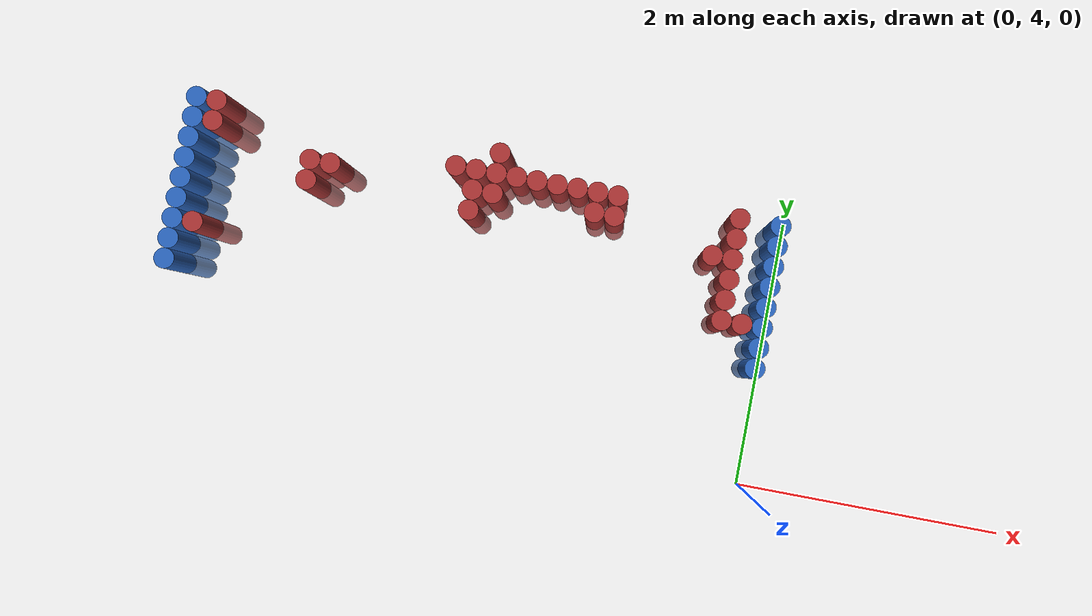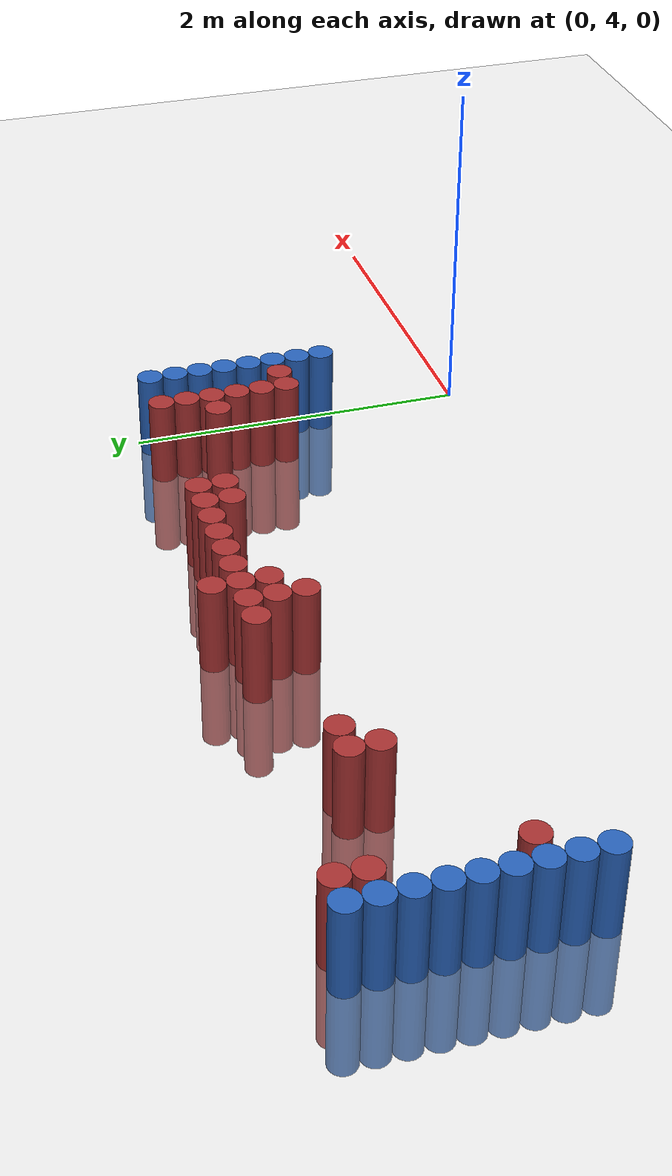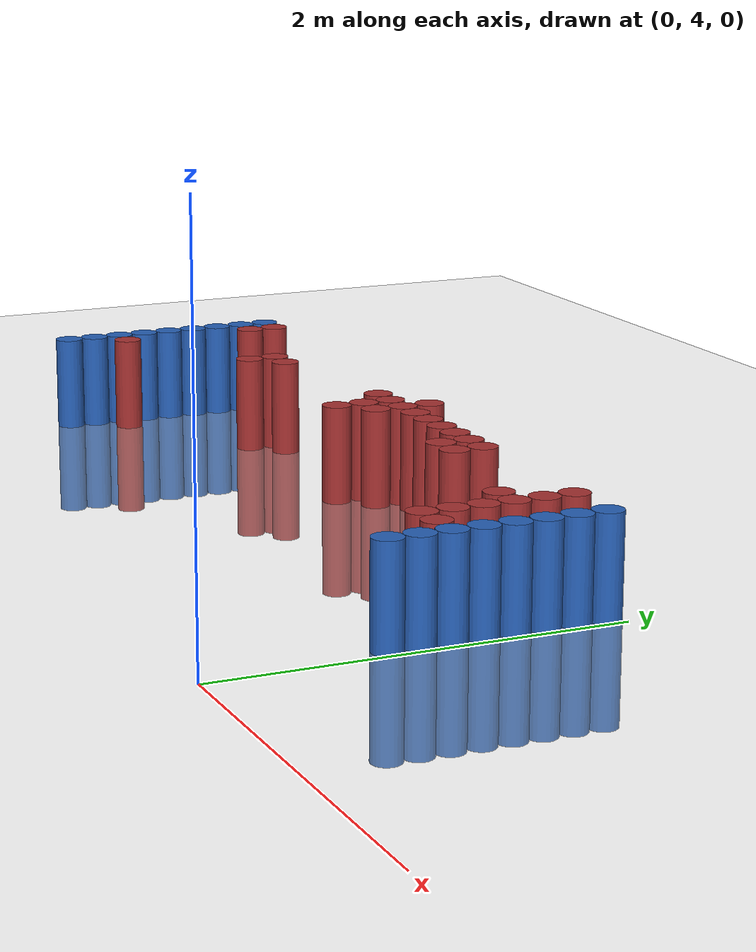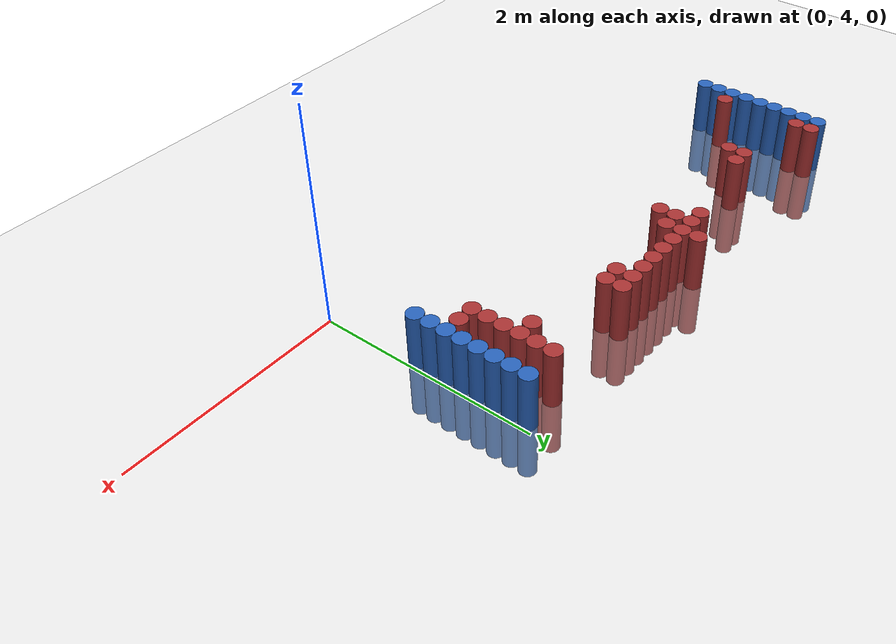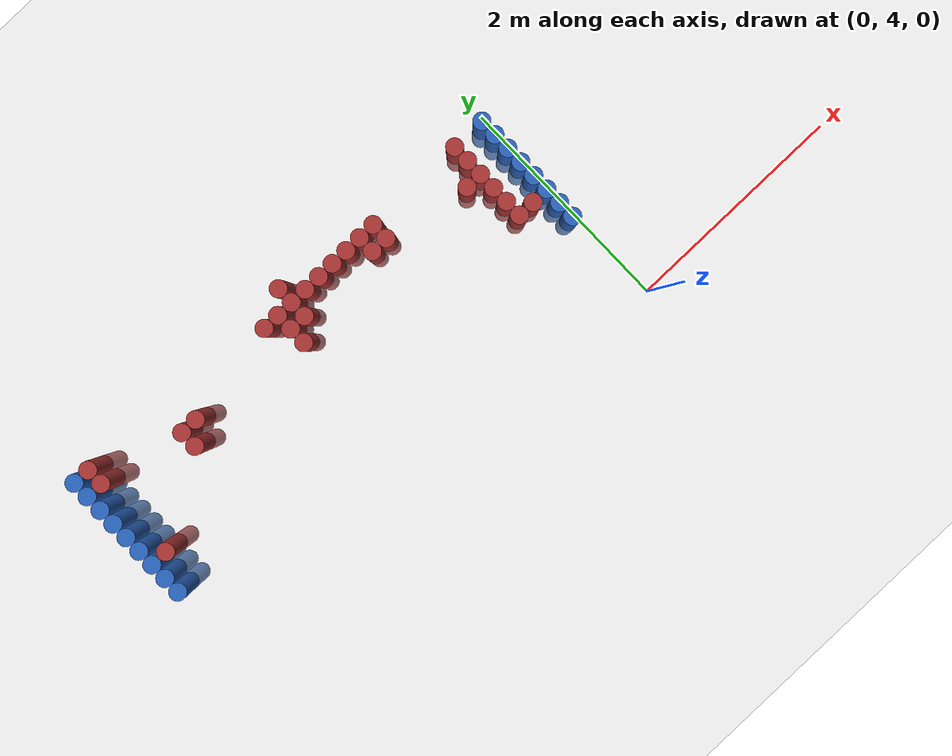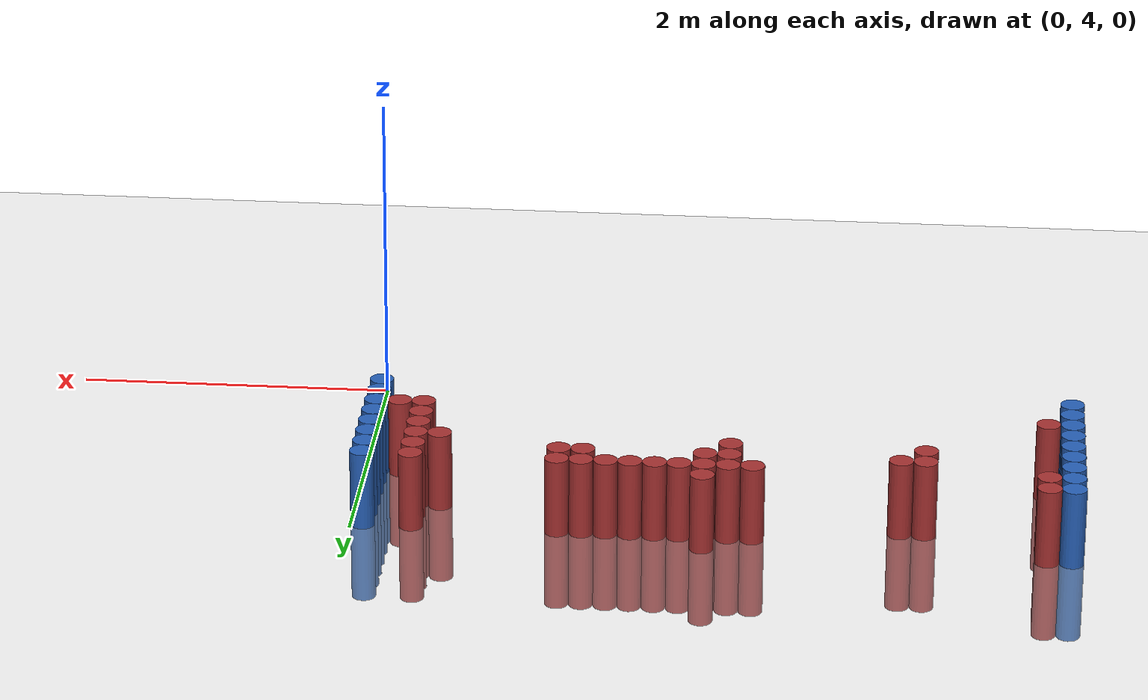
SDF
<sdf version="1.6">
 <world name="default">
  <model name="ground_plane">
   <static>1</static>
   <link name="link">
    <collision name="collision">
     <geometry><plane><normal>0 0 1</normal><size>100 100</size></plane></geometry>
     <surface><friction><ode><mu>100</mu><mu2>50</mu2></ode></friction></surface>
    </collision>
    <visual name="visual">
     <cast_shadows>0</cast_shadows>
     <geometry><plane><normal>0 0 1</normal><size>100 100</size></plane></geometry>
     <material>
      <script><uri>file://media/materials/scripts/gazebo.material</uri><name>Gazebo/Grey</name></script>
     </material>
    </visual>
   </link>
  </model>
  <model name="unit_cylinder_92">
   <static>1</static>
   <pose>-0.075000 4.875000 0.000000 0.000000 0.000000 0.000000</pose>
   <link name="link">
    <inertial>
     <mass>1</mass>
     <inertia><ixx>0.145833</ixx><ixy>0</ixy><ixz>0</ixz><iyy>0.145833</iyy><iyz>0</iyz><izz>0.125</izz></inertia>
    </inertial>
    <collision name="collision">
     <geometry><cylinder><radius>0.075000</radius><length>1</length></cylinder></geometry>
    </collision>
    <visual name="visual">
     <geometry><cylinder><radius>0.075000</radius><length>1</length></cylinder></geometry>
     <material>
      <ambient>0.152000 0.379000 0.720000 1</ambient>
      <diffuse>0.152000 0.379000 0.720000 1</diffuse>
     </material>
     <material>
      <script><name>Gazebo/Grey</name><uri>file://media/materials/scripts/gazebo.material</uri></script>
     </material>
    </visual>
   </link>
  </model>
  <model name="unit_cylinder_93">
   <static>1</static>
   <pose>-4.425000 4.875000 0.000000 0.000000 0.000000 0.000000</pose>
   <link name="link">
    <inertial>
     <mass>1</mass>
     <inertia><ixx>0.145833</ixx><ixy>0</ixy><ixz>0</ixz><iyy>0.145833</iyy><iyz>0</iyz><izz>0.125</izz></inertia>
    </inertial>
    <collision name="collision">
     <geometry><cylinder><radius>0.075000</radius><length>1</length></cylinder></geometry>
    </collision>
    <visual name="visual">
     <geometry><cylinder><radius>0.075000</radius><length>1</length></cylinder></geometry>
     <material>
      <ambient>0.152000 0.379000 0.720000 1</ambient>
      <diffuse>0.152000 0.379000 0.720000 1</diffuse>
     </material>
     <material>
      <script><name>Gazebo/Grey</name><uri>file://media/materials/scripts/gazebo.material</uri></script>
     </material>
    </visual>
   </link>
  </model>
  <model name="unit_cylinder_94">
   <static>1</static>
   <pose>-0.075000 5.025000 0.000000 0.000000 0.000000 0.000000</pose>
   <link name="link">
    <inertial>
     <mass>1</mass>
     <inertia><ixx>0.145833</ixx><ixy>0</ixy><ixz>0</ixz><iyy>0.145833</iyy><iyz>0</iyz><izz>0.125</izz></inertia>
    </inertial>
    <collision name="collision">
     <geometry><cylinder><radius>0.075000</radius><length>1</length></cylinder></geometry>
    </collision>
    <visual name="visual">
     <geometry><cylinder><radius>0.075000</radius><length>1</length></cylinder></geometry>
     <material>
      <ambient>0.152000 0.379000 0.720000 1</ambient>
      <diffuse>0.152000 0.379000 0.720000 1</diffuse>
     </material>
     <material>
      <script><name>Gazebo/Grey</name><uri>file://media/materials/scripts/gazebo.material</uri></script>
     </material>
    </visual>
   </link>
  </model>
  <model name="unit_cylinder_95">
   <static>1</static>
   <pose>-4.425000 5.025000 0.000000 0.000000 0.000000 0.000000</pose>
   <link name="link">
    <inertial>
     <mass>1</mass>
     <inertia><ixx>0.145833</ixx><ixy>0</ixy><ixz>0</ixz><iyy>0.145833</iyy><iyz>0</iyz><izz>0.125</izz></inertia>
    </inertial>
    <collision name="collision">
     <geometry><cylinder><radius>0.075000</radius><length>1</length></cylinder></geometry>
    </collision>
    <visual name="visual">
     <geometry><cylinder><radius>0.075000</radius><length>1</length></cylinder></geometry>
     <material>
      <ambient>0.152000 0.379000 0.720000 1</ambient>
      <diffuse>0.152000 0.379000 0.720000 1</diffuse>
     </material>
     <material>
      <script><name>Gazebo/Grey</name><uri>file://media/materials/scripts/gazebo.material</uri></script>
     </material>
    </visual>
   </link>
  </model>
  <model name="unit_cylinder_96">
   <static>1</static>
   <pose>-4.425000 5.175000 0.000000 0.000000 0.000000 0.000000</pose>
   <link name="link">
    <inertial>
     <mass>1</mass>
     <inertia><ixx>0.145833</ixx><ixy>0</ixy><ixz>0</ixz><iyy>0.145833</iyy><iyz>0</iyz><izz>0.125</izz></inertia>
    </inertial>
    <collision name="collision">
     <geometry><cylinder><radius>0.075000</radius><length>1</length></cylinder></geometry>
    </collision>
    <visual name="visual">
     <geometry><cylinder><radius>0.075000</radius><length>1</length></cylinder></geometry>
     <material>
      <ambient>0.152000 0.379000 0.720000 1</ambient>
      <diffuse>0.152000 0.379000 0.720000 1</diffuse>
     </material>
     <material>
      <script><name>Gazebo/Grey</name><uri>file://media/materials/scripts/gazebo.material</uri></script>
     </material>
    </visual>
   </link>
  </model>
  <model name="unit_cylinder_97">
   <static>1</static>
   <pose>-4.425000 5.325000 0.000000 0.000000 0.000000 0.000000</pose>
   <link name="link">
    <inertial>
     <mass>1</mass>
     <inertia><ixx>0.145833</ixx><ixy>0</ixy><ixz>0</ixz><iyy>0.145833</iyy><iyz>0</iyz><izz>0.125</izz></inertia>
    </inertial>
    <collision name="collision">
     <geometry><cylinder><radius>0.075000</radius><length>1</length></cylinder></geometry>
    </collision>
    <visual name="visual">
     <geometry><cylinder><radius>0.075000</radius><length>1</length></cylinder></geometry>
     <material>
      <ambient>0.152000 0.379000 0.720000 1</ambient>
      <diffuse>0.152000 0.379000 0.720000 1</diffuse>
     </material>
     <material>
      <script><name>Gazebo/Grey</name><uri>file://media/materials/scripts/gazebo.material</uri></script>
     </material>
    </visual>
   </link>
  </model>
  <model name="unit_cylinder_98">
   <static>1</static>
   <pose>-4.425000 5.475000 0.000000 0.000000 0.000000 0.000000</pose>
   <link name="link">
    <inertial>
     <mass>1</mass>
     <inertia><ixx>0.145833</ixx><ixy>0</ixy><ixz>0</ixz><iyy>0.145833</iyy><iyz>0</iyz><izz>0.125</izz></inertia>
    </inertial>
    <collision name="collision">
     <geometry><cylinder><radius>0.075000</radius><length>1</length></cylinder></geometry>
    </collision>
    <visual name="visual">
     <geometry><cylinder><radius>0.075000</radius><length>1</length></cylinder></geometry>
     <material>
      <ambient>0.152000 0.379000 0.720000 1</ambient>
      <diffuse>0.152000 0.379000 0.720000 1</diffuse>
     </material>
     <material>
      <script><name>Gazebo/Grey</name><uri>file://media/materials/scripts/gazebo.material</uri></script>
     </material>
    </visual>
   </link>
  </model>
  <model name="unit_cylinder_99">
   <static>1</static>
   <pose>-4.425000 5.625000 0.000000 0.000000 0.000000 0.000000</pose>
   <link name="link">
    <inertial>
     <mass>1</mass>
     <inertia><ixx>0.145833</ixx><ixy>0</ixy><ixz>0</ixz><iyy>0.145833</iyy><iyz>0</iyz><izz>0.125</izz></inertia>
    </inertial>
    <collision name="collision">
     <geometry><cylinder><radius>0.075000</radius><length>1</length></cylinder></geometry>
    </collision>
    <visual name="visual">
     <geometry><cylinder><radius>0.075000</radius><length>1</length></cylinder></geometry>
     <material>
      <ambient>0.152000 0.379000 0.720000 1</ambient>
      <diffuse>0.152000 0.379000 0.720000 1</diffuse>
     </material>
     <material>
      <script><name>Gazebo/Grey</name><uri>file://media/materials/scripts/gazebo.material</uri></script>
     </material>
    </visual>
   </link>
  </model>
  <model name="unit_cylinder_100">
   <static>1</static>
   <pose>-4.425000 5.775000 0.000000 0.000000 0.000000 0.000000</pose>
   <link name="link">
    <inertial>
     <mass>1</mass>
     <inertia><ixx>0.145833</ixx><ixy>0</ixy><ixz>0</ixz><iyy>0.145833</iyy><iyz>0</iyz><izz>0.125</izz></inertia>
    </inertial>
    <collision name="collision">
     <geometry><cylinder><radius>0.075000</radius><length>1</length></cylinder></geometry>
    </collision>
    <visual name="visual">
     <geometry><cylinder><radius>0.075000</radius><length>1</length></cylinder></geometry>
     <material>
      <ambient>0.152000 0.379000 0.720000 1</ambient>
      <diffuse>0.152000 0.379000 0.720000 1</diffuse>
     </material>
     <material>
      <script><name>Gazebo/Grey</name><uri>file://media/materials/scripts/gazebo.material</uri></script>
     </material>
    </visual>
   </link>
  </model>
  <model name="unit_cylinder_101">
   <static>1</static>
   <pose>-4.425000 5.925000 0.000000 0.000000 0.000000 0.000000</pose>
   <link name="link">
    <inertial>
     <mass>1</mass>
     <inertia><ixx>0.145833</ixx><ixy>0</ixy><ixz>0</ixz><iyy>0.145833</iyy><iyz>0</iyz><izz>0.125</izz></inertia>
    </inertial>
    <collision name="collision">
     <geometry><cylinder><radius>0.075000</radius><length>1</length></cylinder></geometry>
    </collision>
    <visual name="visual">
     <geometry><cylinder><radius>0.075000</radius><length>1</length></cylinder></geometry>
     <material>
      <ambient>0.152000 0.379000 0.720000 1</ambient>
      <diffuse>0.152000 0.379000 0.720000 1</diffuse>
     </material>
     <material>
      <script><name>Gazebo/Grey</name><uri>file://media/materials/scripts/gazebo.material</uri></script>
     </material>
    </visual>
   </link>
  </model>
  <model name="unit_cylinder_102">
   <static>1</static>
   <pose>-4.425000 6.075000 0.000000 0.000000 0.000000 0.000000</pose>
   <link name="link">
    <inertial>
     <mass>1</mass>
     <inertia><ixx>0.145833</ixx><ixy>0</ixy><ixz>0</ixz><iyy>0.145833</iyy><iyz>0</iyz><izz>0.125</izz></inertia>
    </inertial>
    <collision name="collision">
     <geometry><cylinder><radius>0.075000</radius><length>1</length></cylinder></geometry>
    </collision>
    <visual name="visual">
     <geometry><cylinder><radius>0.075000</radius><length>1</length></cylinder></geometry>
     <material>
      <ambient>0.152000 0.379000 0.720000 1</ambient>
      <diffuse>0.152000 0.379000 0.720000 1</diffuse>
     </material>
     <material>
      <script><name>Gazebo/Grey</name><uri>file://media/materials/scripts/gazebo.material</uri></script>
     </material>
    </visual>
   </link>
  </model>
  <model name="unit_cylinder_126">
   <static>1</static>
   <pose>-4.275000 5.175000 0.000000 0.000000 0.000000 0.000000</pose>
   <link name="link">
    <inertial>
     <mass>1</mass>
     <inertia><ixx>0.145833</ixx><ixy>0</ixy><ixz>0</ixz><iyy>0.145833</iyy><iyz>0</iyz><izz>0.125</izz></inertia>
    </inertial>
    <collision name="collision">
     <geometry><cylinder><radius>0.075000</radius><length>1</length></cylinder></geometry>
    </collision>
    <visual name="visual">
     <geometry><cylinder><radius>0.075000</radius><length>1</length></cylinder></geometry>
     <material>
      <ambient>0.648000 0.192000 0.192000 1</ambient>
      <diffuse>0.648000 0.192000 0.192000 1</diffuse>
     </material>
     <material>
      <script><name>Gazebo/Grey</name><uri>file://media/materials/scripts/gazebo.material</uri></script>
     </material>
    </visual>
   </link>
  </model>
  <model name="unit_cylinder_127">
   <static>1</static>
   <pose>-4.275000 5.925000 0.000000 0.000000 0.000000 0.000000</pose>
   <link name="link">
    <inertial>
     <mass>1</mass>
     <inertia><ixx>0.145833</ixx><ixy>0</ixy><ixz>0</ixz><iyy>0.145833</iyy><iyz>0</iyz><izz>0.125</izz></inertia>
    </inertial>
    <collision name="collision">
     <geometry><cylinder><radius>0.075000</radius><length>1</length></cylinder></geometry>
    </collision>
    <visual name="visual">
     <geometry><cylinder><radius>0.075000</radius><length>1</length></cylinder></geometry>
     <material>
      <ambient>0.648000 0.192000 0.192000 1</ambient>
      <diffuse>0.648000 0.192000 0.192000 1</diffuse>
     </material>
     <material>
      <script><name>Gazebo/Grey</name><uri>file://media/materials/scripts/gazebo.material</uri></script>
     </material>
    </visual>
   </link>
  </model>
  <model name="unit_cylinder_128">
   <static>1</static>
   <pose>-4.275000 6.075000 0.000000 0.000000 0.000000 0.000000</pose>
   <link name="link">
    <inertial>
     <mass>1</mass>
     <inertia><ixx>0.145833</ixx><ixy>0</ixy><ixz>0</ixz><iyy>0.145833</iyy><iyz>0</iyz><izz>0.125</izz></inertia>
    </inertial>
    <collision name="collision">
     <geometry><cylinder><radius>0.075000</radius><length>1</length></cylinder></geometry>
    </collision>
    <visual name="visual">
     <geometry><cylinder><radius>0.075000</radius><length>1</length></cylinder></geometry>
     <material>
      <ambient>0.648000 0.192000 0.192000 1</ambient>
      <diffuse>0.648000 0.192000 0.192000 1</diffuse>
     </material>
     <material>
      <script><name>Gazebo/Grey</name><uri>file://media/materials/scripts/gazebo.material</uri></script>
     </material>
    </visual>
   </link>
  </model>
  <model name="unit_cylinder_144">
   <static>1</static>
   <pose>-3.525000 5.625000 0.000000 0.000000 0.000000 0.000000</pose>
   <link name="link">
    <inertial>
     <mass>1</mass>
     <inertia><ixx>0.145833</ixx><ixy>0</ixy><ixz>0</ixz><iyy>0.145833</iyy><iyz>0</iyz><izz>0.125</izz></inertia>
    </inertial>
    <collision name="collision">
     <geometry><cylinder><radius>0.075000</radius><length>1</length></cylinder></geometry>
    </collision>
    <visual name="visual">
     <geometry><cylinder><radius>0.075000</radius><length>1</length></cylinder></geometry>
     <material>
      <ambient>0.648000 0.192000 0.192000 1</ambient>
      <diffuse>0.648000 0.192000 0.192000 1</diffuse>
     </material>
     <material>
      <script><name>Gazebo/Grey</name><uri>file://media/materials/scripts/gazebo.material</uri></script>
     </material>
    </visual>
   </link>
  </model>
  <model name="unit_cylinder_145">
   <static>1</static>
   <pose>-3.525000 5.775000 0.000000 0.000000 0.000000 0.000000</pose>
   <link name="link">
    <inertial>
     <mass>1</mass>
     <inertia><ixx>0.145833</ixx><ixy>0</ixy><ixz>0</ixz><iyy>0.145833</iyy><iyz>0</iyz><izz>0.125</izz></inertia>
    </inertial>
    <collision name="collision">
     <geometry><cylinder><radius>0.075000</radius><length>1</length></cylinder></geometry>
    </collision>
    <visual name="visual">
     <geometry><cylinder><radius>0.075000</radius><length>1</length></cylinder></geometry>
     <material>
      <ambient>0.648000 0.192000 0.192000 1</ambient>
      <diffuse>0.648000 0.192000 0.192000 1</diffuse>
     </material>
     <material>
      <script><name>Gazebo/Grey</name><uri>file://media/materials/scripts/gazebo.material</uri></script>
     </material>
    </visual>
   </link>
  </model>
  <model name="unit_cylinder_147">
   <static>1</static>
   <pose>-3.375000 5.775000 0.000000 0.000000 0.000000 0.000000</pose>
   <link name="link">
    <inertial>
     <mass>1</mass>
     <inertia><ixx>0.145833</ixx><ixy>0</ixy><ixz>0</ixz><iyy>0.145833</iyy><iyz>0</iyz><izz>0.125</izz></inertia>
    </inertial>
    <collision name="collision">
     <geometry><cylinder><radius>0.075000</radius><length>1</length></cylinder></geometry>
    </collision>
    <visual name="visual">
     <geometry><cylinder><radius>0.075000</radius><length>1</length></cylinder></geometry>
     <material>
      <ambient>0.648000 0.192000 0.192000 1</ambient>
      <diffuse>0.648000 0.192000 0.192000 1</diffuse>
     </material>
     <material>
      <script><name>Gazebo/Grey</name><uri>file://media/materials/scripts/gazebo.material</uri></script>
     </material>
    </visual>
   </link>
  </model>
  <model name="unit_cylinder_167">
   <static>1</static>
   <pose>-2.475000 5.925000 0.000000 0.000000 0.000000 0.000000</pose>
   <link name="link">
    <inertial>
     <mass>1</mass>
     <inertia><ixx>0.145833</ixx><ixy>0</ixy><ixz>0</ixz><iyy>0.145833</iyy><iyz>0</iyz><izz>0.125</izz></inertia>
    </inertial>
    <collision name="collision">
     <geometry><cylinder><radius>0.075000</radius><length>1</length></cylinder></geometry>
    </collision>
    <visual name="visual">
     <geometry><cylinder><radius>0.075000</radius><length>1</length></cylinder></geometry>
     <material>
      <ambient>0.648000 0.192000 0.192000 1</ambient>
      <diffuse>0.648000 0.192000 0.192000 1</diffuse>
     </material>
     <material>
      <script><name>Gazebo/Grey</name><uri>file://media/materials/scripts/gazebo.material</uri></script>
     </material>
    </visual>
   </link>
  </model>
  <model name="unit_cylinder_170">
   <static>1</static>
   <pose>-2.325000 5.625000 0.000000 0.000000 0.000000 0.000000</pose>
   <link name="link">
    <inertial>
     <mass>1</mass>
     <inertia><ixx>0.145833</ixx><ixy>0</ixy><ixz>0</ixz><iyy>0.145833</iyy><iyz>0</iyz><izz>0.125</izz></inertia>
    </inertial>
    <collision name="collision">
     <geometry><cylinder><radius>0.075000</radius><length>1</length></cylinder></geometry>
    </collision>
    <visual name="visual">
     <geometry><cylinder><radius>0.075000</radius><length>1</length></cylinder></geometry>
     <material>
      <ambient>0.648000 0.192000 0.192000 1</ambient>
      <diffuse>0.648000 0.192000 0.192000 1</diffuse>
     </material>
     <material>
      <script><name>Gazebo/Grey</name><uri>file://media/materials/scripts/gazebo.material</uri></script>
     </material>
    </visual>
   </link>
  </model>
  <model name="unit_cylinder_171">
   <static>1</static>
   <pose>-2.325000 5.775000 0.000000 0.000000 0.000000 0.000000</pose>
   <link name="link">
    <inertial>
     <mass>1</mass>
     <inertia><ixx>0.145833</ixx><ixy>0</ixy><ixz>0</ixz><iyy>0.145833</iyy><iyz>0</iyz><izz>0.125</izz></inertia>
    </inertial>
    <collision name="collision">
     <geometry><cylinder><radius>0.075000</radius><length>1</length></cylinder></geometry>
    </collision>
    <visual name="visual">
     <geometry><cylinder><radius>0.075000</radius><length>1</length></cylinder></geometry>
     <material>
      <ambient>0.648000 0.192000 0.192000 1</ambient>
      <diffuse>0.648000 0.192000 0.192000 1</diffuse>
     </material>
     <material>
      <script><name>Gazebo/Grey</name><uri>file://media/materials/scripts/gazebo.material</uri></script>
     </material>
    </visual>
   </link>
  </model>
  <model name="unit_cylinder_172">
   <static>1</static>
   <pose>-2.325000 5.925000 0.000000 0.000000 0.000000 0.000000</pose>
   <link name="link">
    <inertial>
     <mass>1</mass>
     <inertia><ixx>0.145833</ixx><ixy>0</ixy><ixz>0</ixz><iyy>0.145833</iyy><iyz>0</iyz><izz>0.125</izz></inertia>
    </inertial>
    <collision name="collision">
     <geometry><cylinder><radius>0.075000</radius><length>1</length></cylinder></geometry>
    </collision>
    <visual name="visual">
     <geometry><cylinder><radius>0.075000</radius><length>1</length></cylinder></geometry>
     <material>
      <ambient>0.648000 0.192000 0.192000 1</ambient>
      <diffuse>0.648000 0.192000 0.192000 1</diffuse>
     </material>
     <material>
      <script><name>Gazebo/Grey</name><uri>file://media/materials/scripts/gazebo.material</uri></script>
     </material>
    </visual>
   </link>
  </model>
  <model name="unit_cylinder_176">
   <static>1</static>
   <pose>-2.175000 5.775000 0.000000 0.000000 0.000000 0.000000</pose>
   <link name="link">
    <inertial>
     <mass>1</mass>
     <inertia><ixx>0.145833</ixx><ixy>0</ixy><ixz>0</ixz><iyy>0.145833</iyy><iyz>0</iyz><izz>0.125</izz></inertia>
    </inertial>
    <collision name="collision">
     <geometry><cylinder><radius>0.075000</radius><length>1</length></cylinder></geometry>
    </collision>
    <visual name="visual">
     <geometry><cylinder><radius>0.075000</radius><length>1</length></cylinder></geometry>
     <material>
      <ambient>0.648000 0.192000 0.192000 1</ambient>
      <diffuse>0.648000 0.192000 0.192000 1</diffuse>
     </material>
     <material>
      <script><name>Gazebo/Grey</name><uri>file://media/materials/scripts/gazebo.material</uri></script>
     </material>
    </visual>
   </link>
  </model>
  <model name="unit_cylinder_177">
   <static>1</static>
   <pose>-2.175000 5.925000 0.000000 0.000000 0.000000 0.000000</pose>
   <link name="link">
    <inertial>
     <mass>1</mass>
     <inertia><ixx>0.145833</ixx><ixy>0</ixy><ixz>0</ixz><iyy>0.145833</iyy><iyz>0</iyz><izz>0.125</izz></inertia>
    </inertial>
    <collision name="collision">
     <geometry><cylinder><radius>0.075000</radius><length>1</length></cylinder></geometry>
    </collision>
    <visual name="visual">
     <geometry><cylinder><radius>0.075000</radius><length>1</length></cylinder></geometry>
     <material>
      <ambient>0.648000 0.192000 0.192000 1</ambient>
      <diffuse>0.648000 0.192000 0.192000 1</diffuse>
     </material>
     <material>
      <script><name>Gazebo/Grey</name><uri>file://media/materials/scripts/gazebo.material</uri></script>
     </material>
    </visual>
   </link>
  </model>
  <model name="unit_cylinder_178">
   <static>1</static>
   <pose>-2.175000 6.075000 0.000000 0.000000 0.000000 0.000000</pose>
   <link name="link">
    <inertial>
     <mass>1</mass>
     <inertia><ixx>0.145833</ixx><ixy>0</ixy><ixz>0</ixz><iyy>0.145833</iyy><iyz>0</iyz><izz>0.125</izz></inertia>
    </inertial>
    <collision name="collision">
     <geometry><cylinder><radius>0.075000</radius><length>1</length></cylinder></geometry>
    </collision>
    <visual name="visual">
     <geometry><cylinder><radius>0.075000</radius><length>1</length></cylinder></geometry>
     <material>
      <ambient>0.648000 0.192000 0.192000 1</ambient>
      <diffuse>0.648000 0.192000 0.192000 1</diffuse>
     </material>
     <material>
      <script><name>Gazebo/Grey</name><uri>file://media/materials/scripts/gazebo.material</uri></script>
     </material>
    </visual>
   </link>
  </model>
  <model name="unit_cylinder_179">
   <static>1</static>
   <pose>-2.025000 5.925000 0.000000 0.000000 0.000000 0.000000</pose>
   <link name="link">
    <inertial>
     <mass>1</mass>
     <inertia><ixx>0.145833</ixx><ixy>0</ixy><ixz>0</ixz><iyy>0.145833</iyy><iyz>0</iyz><izz>0.125</izz></inertia>
    </inertial>
    <collision name="collision">
     <geometry><cylinder><radius>0.075000</radius><length>1</length></cylinder></geometry>
    </collision>
    <visual name="visual">
     <geometry><cylinder><radius>0.075000</radius><length>1</length></cylinder></geometry>
     <material>
      <ambient>0.648000 0.192000 0.192000 1</ambient>
      <diffuse>0.648000 0.192000 0.192000 1</diffuse>
     </material>
     <material>
      <script><name>Gazebo/Grey</name><uri>file://media/materials/scripts/gazebo.material</uri></script>
     </material>
    </visual>
   </link>
  </model>
  <model name="unit_cylinder_182">
   <static>1</static>
   <pose>-1.875000 5.925000 0.000000 0.000000 0.000000 0.000000</pose>
   <link name="link">
    <inertial>
     <mass>1</mass>
     <inertia><ixx>0.145833</ixx><ixy>0</ixy><ixz>0</ixz><iyy>0.145833</iyy><iyz>0</iyz><izz>0.125</izz></inertia>
    </inertial>
    <collision name="collision">
     <geometry><cylinder><radius>0.075000</radius><length>1</length></cylinder></geometry>
    </collision>
    <visual name="visual">
     <geometry><cylinder><radius>0.075000</radius><length>1</length></cylinder></geometry>
     <material>
      <ambient>0.648000 0.192000 0.192000 1</ambient>
      <diffuse>0.648000 0.192000 0.192000 1</diffuse>
     </material>
     <material>
      <script><name>Gazebo/Grey</name><uri>file://media/materials/scripts/gazebo.material</uri></script>
     </material>
    </visual>
   </link>
  </model>
  <model name="unit_cylinder_189">
   <static>1</static>
   <pose>-1.725000 5.925000 0.000000 0.000000 0.000000 0.000000</pose>
   <link name="link">
    <inertial>
     <mass>1</mass>
     <inertia><ixx>0.145833</ixx><ixy>0</ixy><ixz>0</ixz><iyy>0.145833</iyy><iyz>0</iyz><izz>0.125</izz></inertia>
    </inertial>
    <collision name="collision">
     <geometry><cylinder><radius>0.075000</radius><length>1</length></cylinder></geometry>
    </collision>
    <visual name="visual">
     <geometry><cylinder><radius>0.075000</radius><length>1</length></cylinder></geometry>
     <material>
      <ambient>0.648000 0.192000 0.192000 1</ambient>
      <diffuse>0.648000 0.192000 0.192000 1</diffuse>
     </material>
     <material>
      <script><name>Gazebo/Grey</name><uri>file://media/materials/scripts/gazebo.material</uri></script>
     </material>
    </visual>
   </link>
  </model>
  <model name="unit_cylinder_196">
   <static>1</static>
   <pose>-1.575000 5.925000 0.000000 0.000000 0.000000 0.000000</pose>
   <link name="link">
    <inertial>
     <mass>1</mass>
     <inertia><ixx>0.145833</ixx><ixy>0</ixy><ixz>0</ixz><iyy>0.145833</iyy><iyz>0</iyz><izz>0.125</izz></inertia>
    </inertial>
    <collision name="collision">
     <geometry><cylinder><radius>0.075000</radius><length>1</length></cylinder></geometry>
    </collision>
    <visual name="visual">
     <geometry><cylinder><radius>0.075000</radius><length>1</length></cylinder></geometry>
     <material>
      <ambient>0.648000 0.192000 0.192000 1</ambient>
      <diffuse>0.648000 0.192000 0.192000 1</diffuse>
     </material>
     <material>
      <script><name>Gazebo/Grey</name><uri>file://media/materials/scripts/gazebo.material</uri></script>
     </material>
    </visual>
   </link>
  </model>
  <model name="unit_cylinder_201">
   <static>1</static>
   <pose>-1.425000 5.775000 0.000000 0.000000 0.000000 0.000000</pose>
   <link name="link">
    <inertial>
     <mass>1</mass>
     <inertia><ixx>0.145833</ixx><ixy>0</ixy><ixz>0</ixz><iyy>0.145833</iyy><iyz>0</iyz><izz>0.125</izz></inertia>
    </inertial>
    <collision name="collision">
     <geometry><cylinder><radius>0.075000</radius><length>1</length></cylinder></geometry>
    </collision>
    <visual name="visual">
     <geometry><cylinder><radius>0.075000</radius><length>1</length></cylinder></geometry>
     <material>
      <ambient>0.648000 0.192000 0.192000 1</ambient>
      <diffuse>0.648000 0.192000 0.192000 1</diffuse>
     </material>
     <material>
      <script><name>Gazebo/Grey</name><uri>file://media/materials/scripts/gazebo.material</uri></script>
     </material>
    </visual>
   </link>
  </model>
  <model name="unit_cylinder_202">
   <static>1</static>
   <pose>-1.425000 5.925000 0.000000 0.000000 0.000000 0.000000</pose>
   <link name="link">
    <inertial>
     <mass>1</mass>
     <inertia><ixx>0.145833</ixx><ixy>0</ixy><ixz>0</ixz><iyy>0.145833</iyy><iyz>0</iyz><izz>0.125</izz></inertia>
    </inertial>
    <collision name="collision">
     <geometry><cylinder><radius>0.075000</radius><length>1</length></cylinder></geometry>
    </collision>
    <visual name="visual">
     <geometry><cylinder><radius>0.075000</radius><length>1</length></cylinder></geometry>
     <material>
      <ambient>0.648000 0.192000 0.192000 1</ambient>
      <diffuse>0.648000 0.192000 0.192000 1</diffuse>
     </material>
     <material>
      <script><name>Gazebo/Grey</name><uri>file://media/materials/scripts/gazebo.material</uri></script>
     </material>
    </visual>
   </link>
  </model>
  <model name="unit_cylinder_206">
   <static>1</static>
   <pose>-1.275000 5.775000 0.000000 0.000000 0.000000 0.000000</pose>
   <link name="link">
    <inertial>
     <mass>1</mass>
     <inertia><ixx>0.145833</ixx><ixy>0</ixy><ixz>0</ixz><iyy>0.145833</iyy><iyz>0</iyz><izz>0.125</izz></inertia>
    </inertial>
    <collision name="collision">
     <geometry><cylinder><radius>0.075000</radius><length>1</length></cylinder></geometry>
    </collision>
    <visual name="visual">
     <geometry><cylinder><radius>0.075000</radius><length>1</length></cylinder></geometry>
     <material>
      <ambient>0.648000 0.192000 0.192000 1</ambient>
      <diffuse>0.648000 0.192000 0.192000 1</diffuse>
     </material>
     <material>
      <script><name>Gazebo/Grey</name><uri>file://media/materials/scripts/gazebo.material</uri></script>
     </material>
    </visual>
   </link>
  </model>
  <model name="unit_cylinder_207">
   <static>1</static>
   <pose>-1.275000 5.925000 0.000000 0.000000 0.000000 0.000000</pose>
   <link name="link">
    <inertial>
     <mass>1</mass>
     <inertia><ixx>0.145833</ixx><ixy>0</ixy><ixz>0</ixz><iyy>0.145833</iyy><iyz>0</iyz><izz>0.125</izz></inertia>
    </inertial>
    <collision name="collision">
     <geometry><cylinder><radius>0.075000</radius><length>1</length></cylinder></geometry>
    </collision>
    <visual name="visual">
     <geometry><cylinder><radius>0.075000</radius><length>1</length></cylinder></geometry>
     <material>
      <ambient>0.648000 0.192000 0.192000 1</ambient>
      <diffuse>0.648000 0.192000 0.192000 1</diffuse>
     </material>
     <material>
      <script><name>Gazebo/Grey</name><uri>file://media/materials/scripts/gazebo.material</uri></script>
     </material>
    </visual>
   </link>
  </model>
  <model name="unit_cylinder_216">
   <static>1</static>
   <pose>-0.525000 5.625000 0.000000 0.000000 0.000000 0.000000</pose>
   <link name="link">
    <inertial>
     <mass>1</mass>
     <inertia><ixx>0.145833</ixx><ixy>0</ixy><ixz>0</ixz><iyy>0.145833</iyy><iyz>0</iyz><izz>0.125</izz></inertia>
    </inertial>
    <collision name="collision">
     <geometry><cylinder><radius>0.075000</radius><length>1</length></cylinder></geometry>
    </collision>
    <visual name="visual">
     <geometry><cylinder><radius>0.075000</radius><length>1</length></cylinder></geometry>
     <material>
      <ambient>0.648000 0.192000 0.192000 1</ambient>
      <diffuse>0.648000 0.192000 0.192000 1</diffuse>
     </material>
     <material>
      <script><name>Gazebo/Grey</name><uri>file://media/materials/scripts/gazebo.material</uri></script>
     </material>
    </visual>
   </link>
  </model>
  <model name="unit_cylinder_222">
   <static>1</static>
   <pose>-0.375000 5.175000 0.000000 0.000000 0.000000 0.000000</pose>
   <link name="link">
    <inertial>
     <mass>1</mass>
     <inertia><ixx>0.145833</ixx><ixy>0</ixy><ixz>0</ixz><iyy>0.145833</iyy><iyz>0</iyz><izz>0.125</izz></inertia>
    </inertial>
    <collision name="collision">
     <geometry><cylinder><radius>0.075000</radius><length>1</length></cylinder></geometry>
    </collision>
    <visual name="visual">
     <geometry><cylinder><radius>0.075000</radius><length>1</length></cylinder></geometry>
     <material>
      <ambient>0.648000 0.192000 0.192000 1</ambient>
      <diffuse>0.648000 0.192000 0.192000 1</diffuse>
     </material>
     <material>
      <script><name>Gazebo/Grey</name><uri>file://media/materials/scripts/gazebo.material</uri></script>
     </material>
    </visual>
   </link>
  </model>
  <model name="unit_cylinder_223">
   <static>1</static>
   <pose>-0.375000 5.325000 0.000000 0.000000 0.000000 0.000000</pose>
   <link name="link">
    <inertial>
     <mass>1</mass>
     <inertia><ixx>0.145833</ixx><ixy>0</ixy><ixz>0</ixz><iyy>0.145833</iyy><iyz>0</iyz><izz>0.125</izz></inertia>
    </inertial>
    <collision name="collision">
     <geometry><cylinder><radius>0.075000</radius><length>1</length></cylinder></geometry>
    </collision>
    <visual name="visual">
     <geometry><cylinder><radius>0.075000</radius><length>1</length></cylinder></geometry>
     <material>
      <ambient>0.648000 0.192000 0.192000 1</ambient>
      <diffuse>0.648000 0.192000 0.192000 1</diffuse>
     </material>
     <material>
      <script><name>Gazebo/Grey</name><uri>file://media/materials/scripts/gazebo.material</uri></script>
     </material>
    </visual>
   </link>
  </model>
  <model name="unit_cylinder_224">
   <static>1</static>
   <pose>-0.375000 5.475000 0.000000 0.000000 0.000000 0.000000</pose>
   <link name="link">
    <inertial>
     <mass>1</mass>
     <inertia><ixx>0.145833</ixx><ixy>0</ixy><ixz>0</ixz><iyy>0.145833</iyy><iyz>0</iyz><izz>0.125</izz></inertia>
    </inertial>
    <collision name="collision">
     <geometry><cylinder><radius>0.075000</radius><length>1</length></cylinder></geometry>
    </collision>
    <visual name="visual">
     <geometry><cylinder><radius>0.075000</radius><length>1</length></cylinder></geometry>
     <material>
      <ambient>0.648000 0.192000 0.192000 1</ambient>
      <diffuse>0.648000 0.192000 0.192000 1</diffuse>
     </material>
     <material>
      <script><name>Gazebo/Grey</name><uri>file://media/materials/scripts/gazebo.material</uri></script>
     </material>
    </visual>
   </link>
  </model>
  <model name="unit_cylinder_225">
   <static>1</static>
   <pose>-0.375000 5.625000 0.000000 0.000000 0.000000 0.000000</pose>
   <link name="link">
    <inertial>
     <mass>1</mass>
     <inertia><ixx>0.145833</ixx><ixy>0</ixy><ixz>0</ixz><iyy>0.145833</iyy><iyz>0</iyz><izz>0.125</izz></inertia>
    </inertial>
    <collision name="collision">
     <geometry><cylinder><radius>0.075000</radius><length>1</length></cylinder></geometry>
    </collision>
    <visual name="visual">
     <geometry><cylinder><radius>0.075000</radius><length>1</length></cylinder></geometry>
     <material>
      <ambient>0.648000 0.192000 0.192000 1</ambient>
      <diffuse>0.648000 0.192000 0.192000 1</diffuse>
     </material>
     <material>
      <script><name>Gazebo/Grey</name><uri>file://media/materials/scripts/gazebo.material</uri></script>
     </material>
    </visual>
   </link>
  </model>
  <model name="unit_cylinder_226">
   <static>1</static>
   <pose>-0.375000 5.775000 0.000000 0.000000 0.000000 0.000000</pose>
   <link name="link">
    <inertial>
     <mass>1</mass>
     <inertia><ixx>0.145833</ixx><ixy>0</ixy><ixz>0</ixz><iyy>0.145833</iyy><iyz>0</iyz><izz>0.125</izz></inertia>
    </inertial>
    <collision name="collision">
     <geometry><cylinder><radius>0.075000</radius><length>1</length></cylinder></geometry>
    </collision>
    <visual name="visual">
     <geometry><cylinder><radius>0.075000</radius><length>1</length></cylinder></geometry>
     <material>
      <ambient>0.648000 0.192000 0.192000 1</ambient>
      <diffuse>0.648000 0.192000 0.192000 1</diffuse>
     </material>
     <material>
      <script><name>Gazebo/Grey</name><uri>file://media/materials/scripts/gazebo.material</uri></script>
     </material>
    </visual>
   </link>
  </model>
  <model name="unit_cylinder_227">
   <static>1</static>
   <pose>-0.375000 5.925000 0.000000 0.000000 0.000000 0.000000</pose>
   <link name="link">
    <inertial>
     <mass>1</mass>
     <inertia><ixx>0.145833</ixx><ixy>0</ixy><ixz>0</ixz><iyy>0.145833</iyy><iyz>0</iyz><izz>0.125</izz></inertia>
    </inertial>
    <collision name="collision">
     <geometry><cylinder><radius>0.075000</radius><length>1</length></cylinder></geometry>
    </collision>
    <visual name="visual">
     <geometry><cylinder><radius>0.075000</radius><length>1</length></cylinder></geometry>
     <material>
      <ambient>0.648000 0.192000 0.192000 1</ambient>
      <diffuse>0.648000 0.192000 0.192000 1</diffuse>
     </material>
     <material>
      <script><name>Gazebo/Grey</name><uri>file://media/materials/scripts/gazebo.material</uri></script>
     </material>
    </visual>
   </link>
  </model>
  <model name="unit_cylinder_234">
   <static>1</static>
   <pose>-0.225000 5.175000 0.000000 0.000000 0.000000 0.000000</pose>
   <link name="link">
    <inertial>
     <mass>1</mass>
     <inertia><ixx>0.145833</ixx><ixy>0</ixy><ixz>0</ixz><iyy>0.145833</iyy><iyz>0</iyz><izz>0.125</izz></inertia>
    </inertial>
    <collision name="collision">
     <geometry><cylinder><radius>0.075000</radius><length>1</length></cylinder></geometry>
    </collision>
    <visual name="visual">
     <geometry><cylinder><radius>0.075000</radius><length>1</length></cylinder></geometry>
     <material>
      <ambient>0.648000 0.192000 0.192000 1</ambient>
      <diffuse>0.648000 0.192000 0.192000 1</diffuse>
     </material>
     <material>
      <script><name>Gazebo/Grey</name><uri>file://media/materials/scripts/gazebo.material</uri></script>
     </material>
    </visual>
   </link>
  </model>
  <model name="unit_cylinder_245">
   <static>1</static>
   <pose>-0.075000 5.175000 0.000000 0.000000 0.000000 0.000000</pose>
   <link name="link">
    <inertial>
     <mass>1</mass>
     <inertia><ixx>0.145833</ixx><ixy>0</ixy><ixz>0</ixz><iyy>0.145833</iyy><iyz>0</iyz><izz>0.125</izz></inertia>
    </inertial>
    <collision name="collision">
     <geometry><cylinder><radius>0.075000</radius><length>1</length></cylinder></geometry>
    </collision>
    <visual name="visual">
     <geometry><cylinder><radius>0.075000</radius><length>1</length></cylinder></geometry>
     <material>
      <ambient>0.152000 0.379000 0.720000 1</ambient>
      <diffuse>0.152000 0.379000 0.720000 1</diffuse>
     </material>
     <material>
      <script><name>Gazebo/Grey</name><uri>file://media/materials/scripts/gazebo.material</uri></script>
     </material>
    </visual>
   </link>
  </model>
  <model name="unit_cylinder_246">
   <static>1</static>
   <pose>-0.075000 5.325000 0.000000 0.000000 0.000000 0.000000</pose>
   <link name="link">
    <inertial>
     <mass>1</mass>
     <inertia><ixx>0.145833</ixx><ixy>0</ixy><ixz>0</ixz><iyy>0.145833</iyy><iyz>0</iyz><izz>0.125</izz></inertia>
    </inertial>
    <collision name="collision">
     <geometry><cylinder><radius>0.075000</radius><length>1</length></cylinder></geometry>
    </collision>
    <visual name="visual">
     <geometry><cylinder><radius>0.075000</radius><length>1</length></cylinder></geometry>
     <material>
      <ambient>0.152000 0.379000 0.720000 1</ambient>
      <diffuse>0.152000 0.379000 0.720000 1</diffuse>
     </material>
     <material>
      <script><name>Gazebo/Grey</name><uri>file://media/materials/scripts/gazebo.material</uri></script>
     </material>
    </visual>
   </link>
  </model>
  <model name="unit_cylinder_247">
   <static>1</static>
   <pose>-0.075000 5.475000 0.000000 0.000000 0.000000 0.000000</pose>
   <link name="link">
    <inertial>
     <mass>1</mass>
     <inertia><ixx>0.145833</ixx><ixy>0</ixy><ixz>0</ixz><iyy>0.145833</iyy><iyz>0</iyz><izz>0.125</izz></inertia>
    </inertial>
    <collision name="collision">
     <geometry><cylinder><radius>0.075000</radius><length>1</length></cylinder></geometry>
    </collision>
    <visual name="visual">
     <geometry><cylinder><radius>0.075000</radius><length>1</length></cylinder></geometry>
     <material>
      <ambient>0.152000 0.379000 0.720000 1</ambient>
      <diffuse>0.152000 0.379000 0.720000 1</diffuse>
     </material>
     <material>
      <script><name>Gazebo/Grey</name><uri>file://media/materials/scripts/gazebo.material</uri></script>
     </material>
    </visual>
   </link>
  </model>
  <model name="unit_cylinder_248">
   <static>1</static>
   <pose>-0.075000 5.625000 0.000000 0.000000 0.000000 0.000000</pose>
   <link name="link">
    <inertial>
     <mass>1</mass>
     <inertia><ixx>0.145833</ixx><ixy>0</ixy><ixz>0</ixz><iyy>0.145833</iyy><iyz>0</iyz><izz>0.125</izz></inertia>
    </inertial>
    <collision name="collision">
     <geometry><cylinder><radius>0.075000</radius><length>1</length></cylinder></geometry>
    </collision>
    <visual name="visual">
     <geometry><cylinder><radius>0.075000</radius><length>1</length></cylinder></geometry>
     <material>
      <ambient>0.152000 0.379000 0.720000 1</ambient>
      <diffuse>0.152000 0.379000 0.720000 1</diffuse>
     </material>
     <material>
      <script><name>Gazebo/Grey</name><uri>file://media/materials/scripts/gazebo.material</uri></script>
     </material>
    </visual>
   </link>
  </model>
  <model name="unit_cylinder_249">
   <static>1</static>
   <pose>-0.075000 5.775000 0.000000 0.000000 0.000000 0.000000</pose>
   <link name="link">
    <inertial>
     <mass>1</mass>
     <inertia><ixx>0.145833</ixx><ixy>0</ixy><ixz>0</ixz><iyy>0.145833</iyy><iyz>0</iyz><izz>0.125</izz></inertia>
    </inertial>
    <collision name="collision">
     <geometry><cylinder><radius>0.075000</radius><length>1</length></cylinder></geometry>
    </collision>
    <visual name="visual">
     <geometry><cylinder><radius>0.075000</radius><length>1</length></cylinder></geometry>
     <material>
      <ambient>0.152000 0.379000 0.720000 1</ambient>
      <diffuse>0.152000 0.379000 0.720000 1</diffuse>
     </material>
     <material>
      <script><name>Gazebo/Grey</name><uri>file://media/materials/scripts/gazebo.material</uri></script>
     </material>
    </visual>
   </link>
  </model>
  <model name="unit_cylinder_250">
   <static>1</static>
   <pose>-0.075000 5.925000 0.000000 0.000000 0.000000 0.000000</pose>
   <link name="link">
    <inertial>
     <mass>1</mass>
     <inertia><ixx>0.145833</ixx><ixy>0</ixy><ixz>0</ixz><iyy>0.145833</iyy><iyz>0</iyz><izz>0.125</izz></inertia>
    </inertial>
    <collision name="collision">
     <geometry><cylinder><radius>0.075000</radius><length>1</length></cylinder></geometry>
    </collision>
    <visual name="visual">
     <geometry><cylinder><radius>0.075000</radius><length>1</length></cylinder></geometry>
     <material>
      <ambient>0.152000 0.379000 0.720000 1</ambient>
      <diffuse>0.152000 0.379000 0.720000 1</diffuse>
     </material>
     <material>
      <script><name>Gazebo/Grey</name><uri>file://media/materials/scripts/gazebo.material</uri></script>
     </material>
    </visual>
   </link>
  </model>
 </world>
</sdf>
